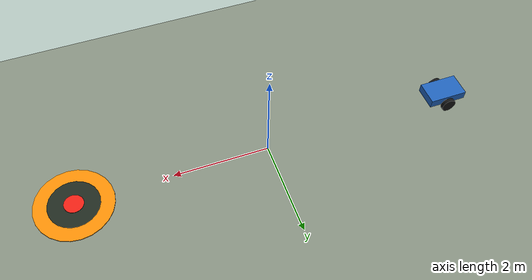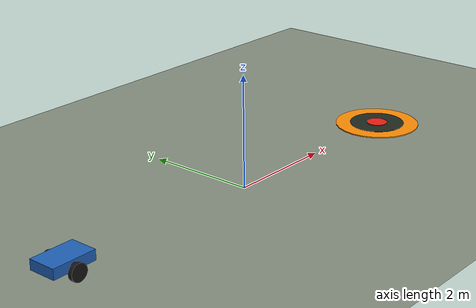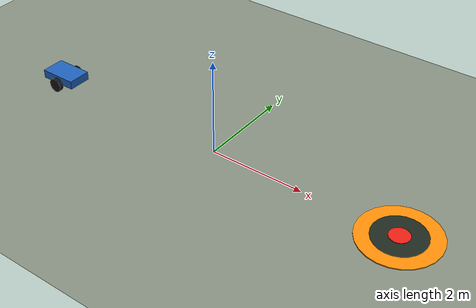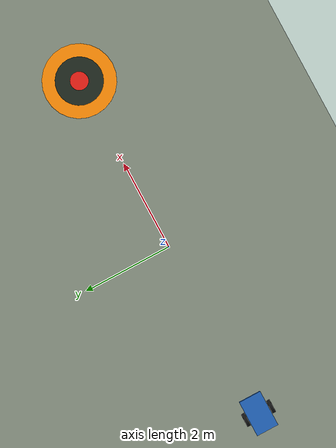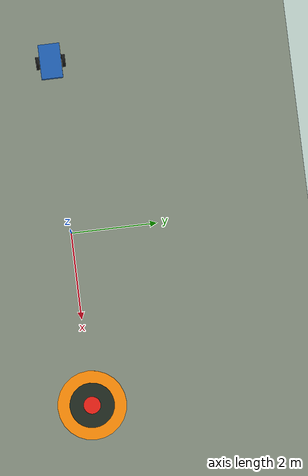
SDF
<?xml version="1.0" encoding="UTF-8"?>
<sdf version="1.9">
  <world name="simple_goal_demo">
    <physics type="ode">
      <max_step_size>0.004</max_step_size>
      <real_time_factor>1.0</real_time_factor>
      <real_time_update_rate>250</real_time_update_rate>
    </physics>
    <gravity>0 0 -9.8</gravity>
    <magnetic_field>6e-06 2.3e-05 -4.2e-05</magnetic_field>
    <scene>
      <grid>true</grid>
      <ambient>0.45 0.45 0.45 1</ambient>
      <background>0.75 0.80 0.85 1</background>
      <shadows>false</shadows>
    </scene>
    <plugin filename="gz-sim-physics-system" name="gz::sim::systems::Physics"/>
    <plugin filename="gz-sim-user-commands-system" name="gz::sim::systems::UserCommands"/>
    <plugin filename="gz-sim-scene-broadcaster-system" name="gz::sim::systems::SceneBroadcaster"/>
    <plugin filename="gz-sim-contact-system" name="gz::sim::systems::Contact"/>
    <plugin filename="gz-sim-imu-system" name="gz::sim::systems::Imu"/>
    <plugin filename="gz-sim-air-pressure-system" name="gz::sim::systems::AirPressure"/>
    <plugin filename="gz-sim-air-speed-system" name="gz::sim::systems::AirSpeed"/>
    <plugin filename="gz-sim-navsat-system" name="gz::sim::systems::NavSat"/>
    <plugin filename="gz-sim-magnetometer-system" name="gz::sim::systems::Magnetometer"/>
    <plugin filename="gz-sim-sensors-system" name="gz::sim::systems::Sensors">
      <render_engine>ogre2</render_engine>
    </plugin>
    <spherical_coordinates>
      <surface_model>EARTH_WGS84</surface_model>
      <world_frame_orientation>ENU</world_frame_orientation>
      <latitude_deg>47.397971057728974</latitude_deg>
      <longitude_deg>8.546163739800146</longitude_deg>
      <elevation>0</elevation>
    </spherical_coordinates>

    <model name="ground_plane">
      <static>true</static>
      <link name="link">
        <collision name="collision">
          <geometry><plane><normal>0 0 1</normal><size>1 1</size></plane></geometry>
        </collision>
        <visual name="visual">
          <geometry><plane><normal>0 0 1</normal><size>30 30</size></plane></geometry>
          <material>
            <ambient>0.52 0.56 0.50 1</ambient>
            <diffuse>0.52 0.56 0.50 1</diffuse>
          </material>
        </visual>
      </link>
    </model>

    <model name="global_goal_marker">
      <static>true</static>
      <pose>4 0 0 0 0 0</pose>
      <link name="marker">
        <visual name="outer_target">
          <pose>0 0 0.012 0 0 0</pose>
          <geometry><cylinder><radius>0.8</radius><length>0.02</length></cylinder></geometry>
          <material><ambient>1 0.55 0.02 1</ambient><diffuse>1 0.55 0.02 1</diffuse></material>
        </visual>
        <visual name="inner_ring">
          <pose>0 0 0.025 0 0 0</pose>
          <geometry><cylinder><radius>0.52</radius><length>0.012</length></cylinder></geometry>
          <material><ambient>0.12 0.16 0.12 1</ambient><diffuse>0.12 0.16 0.12 1</diffuse></material>
        </visual>
        <visual name="goal_center">
          <pose>0 0 0.034 0 0 0</pose>
          <geometry><cylinder><radius>0.2</radius><length>0.012</length></cylinder></geometry>
          <material><ambient>0.92 0.12 0.08 1</ambient><diffuse>0.92 0.12 0.08 1</diffuse></material>
        </visual>
      </link>
    </model>

    <light name="sun" type="directional">
      <pose>0 0 20 0 0 0</pose>
      <cast_shadows>false</cast_shadows>
      <intensity>1</intensity>
      <direction>-0.3 0.4 -0.85</direction>
      <diffuse>0.95 0.95 0.95 1</diffuse>
      <specular>0.25 0.25 0.25 1</specular>
      <attenuation><range>200</range><constant>1</constant></attenuation>
    </light>

    <model name="simple_ugv">
      <pose>-4 0 0 0 0 0</pose>
      <link name="chassis">
        <pose>0 0 0.25 0 0 0</pose>
        <inertial>
          <mass>5.0</mass>
          <inertia><ixx>0.15</ixx><iyy>0.25</iyy><izz>0.30</izz></inertia>
        </inertial>
        <collision name="collision">
          <geometry><box><size>0.8 0.5 0.18</size></box></geometry>
        </collision>
        <visual name="visual">
          <geometry><box><size>0.8 0.5 0.18</size></box></geometry>
          <material>
            <ambient>0.12 0.38 0.72 1</ambient>
            <diffuse>0.12 0.38 0.72 1</diffuse>
          </material>
        </visual>
      </link>
      <link name="left_wheel">
        <pose>0 0.30 0.15 -1.5708 0 0</pose>
        <inertial>
          <mass>0.5</mass>
          <inertia><ixx>0.005</ixx><iyy>0.005</iyy><izz>0.008</izz></inertia>
        </inertial>
        <collision name="collision">
          <geometry><cylinder><radius>0.15</radius><length>0.08</length></cylinder></geometry>
          <surface><friction><ode><mu>1.0</mu><mu2>1.0</mu2></ode></friction></surface>
        </collision>
        <visual name="visual">
          <geometry><cylinder><radius>0.15</radius><length>0.08</length></cylinder></geometry>
          <material><ambient>0.08 0.08 0.08 1</ambient><diffuse>0.08 0.08 0.08 1</diffuse></material>
        </visual>
      </link>
      <link name="right_wheel">
        <pose>0 -0.30 0.15 -1.5708 0 0</pose>
        <inertial>
          <mass>0.5</mass>
          <inertia><ixx>0.005</ixx><iyy>0.005</iyy><izz>0.008</izz></inertia>
        </inertial>
        <collision name="collision">
          <geometry><cylinder><radius>0.15</radius><length>0.08</length></cylinder></geometry>
          <surface><friction><ode><mu>1.0</mu><mu2>1.0</mu2></ode></friction></surface>
        </collision>
        <visual name="visual">
          <geometry><cylinder><radius>0.15</radius><length>0.08</length></cylinder></geometry>
          <material><ambient>0.08 0.08 0.08 1</ambient><diffuse>0.08 0.08 0.08 1</diffuse></material>
        </visual>
      </link>
      <joint name="left_wheel_joint" type="revolute">
        <pose relative_to="left_wheel"/>
        <parent>chassis</parent><child>left_wheel</child>
        <axis><xyz expressed_in="__model__">0 1 0</xyz><limit><lower>-1e16</lower><upper>1e16</upper></limit></axis>
      </joint>
      <joint name="right_wheel_joint" type="revolute">
        <pose relative_to="right_wheel"/>
        <parent>chassis</parent><child>right_wheel</child>
        <axis><xyz expressed_in="__model__">0 1 0</xyz><limit><lower>-1e16</lower><upper>1e16</upper></limit></axis>
      </joint>
      <plugin filename="gz-sim-diff-drive-system" name="gz::sim::systems::DiffDrive">
        <left_joint>left_wheel_joint</left_joint>
        <right_joint>right_wheel_joint</right_joint>
        <wheel_separation>0.60</wheel_separation>
        <wheel_radius>0.15</wheel_radius>
        <odom_publish_frequency>20</odom_publish_frequency>
        <topic>/simple_ugv/cmd_vel</topic>
        <odom_topic>/simple_ugv/odom</odom_topic>
      </plugin>
    </model>
  </world>
</sdf>
